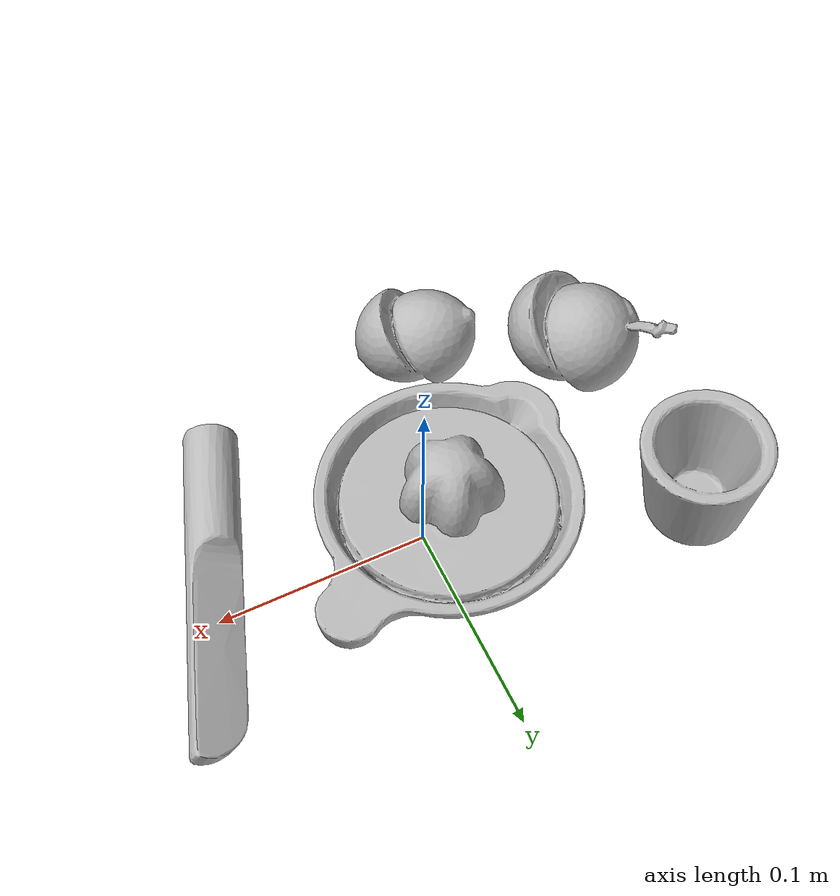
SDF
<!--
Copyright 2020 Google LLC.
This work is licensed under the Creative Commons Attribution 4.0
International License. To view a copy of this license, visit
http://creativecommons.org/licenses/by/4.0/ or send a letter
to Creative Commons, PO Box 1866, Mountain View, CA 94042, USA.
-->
<?xml version="1.0" ?>
<sdf version="1.6">
  <model name="Razer_Taipan_White_Ambidextrous_Gaming_Mouse">
    <link name="link_0">
      <visual name="visual">
        <geometry>
          <mesh>
            <uri>meshes/model.obj</uri>
          </mesh>
        </geometry>
      </visual>
      <collision name="collision_0">
        <geometry>
          <mesh>
            <uri>meshes/model.obj</uri>
          </mesh>
        </geometry>
      </collision>
    </link>
  </model>
</sdf>
